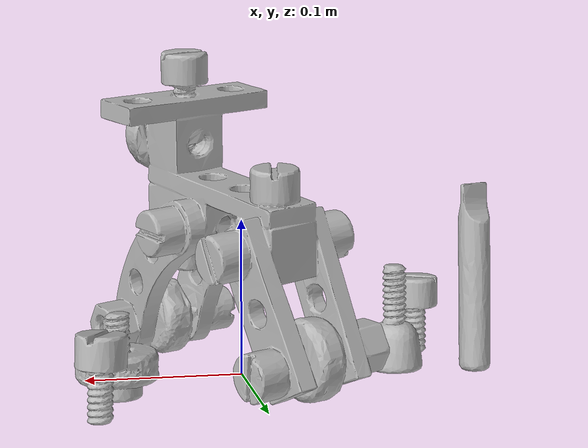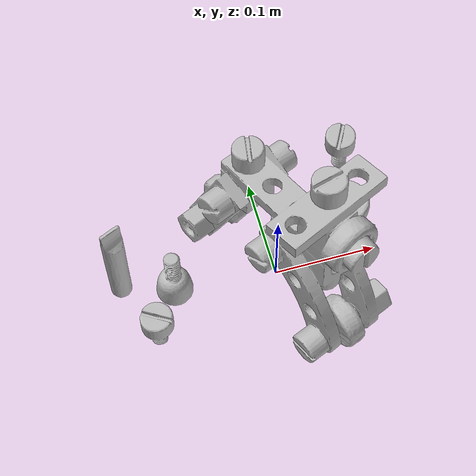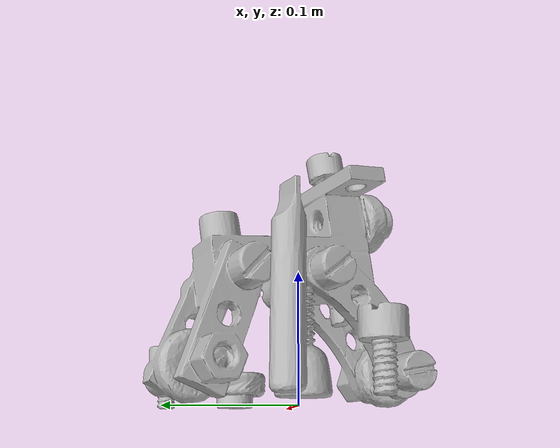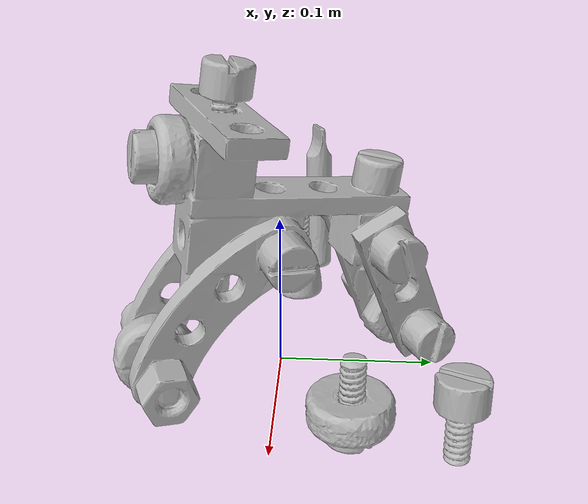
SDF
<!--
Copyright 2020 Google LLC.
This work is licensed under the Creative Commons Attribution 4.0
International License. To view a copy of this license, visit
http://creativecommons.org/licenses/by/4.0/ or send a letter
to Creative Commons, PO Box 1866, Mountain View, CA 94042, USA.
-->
<?xml version="1.0" ?>
<sdf version="1.6">
  <model name="30_CONSTRUCTION_SET">
    <link name="link_0">
      <visual name="visual">
        <geometry>
          <mesh>
            <uri>meshes/model.obj</uri>
          </mesh>
        </geometry>
      </visual>
      <collision name="collision_0">
        <geometry>
          <mesh>
            <uri>meshes/model.obj</uri>
          </mesh>
        </geometry>
      </collision>
    </link>
  </model>
</sdf>
